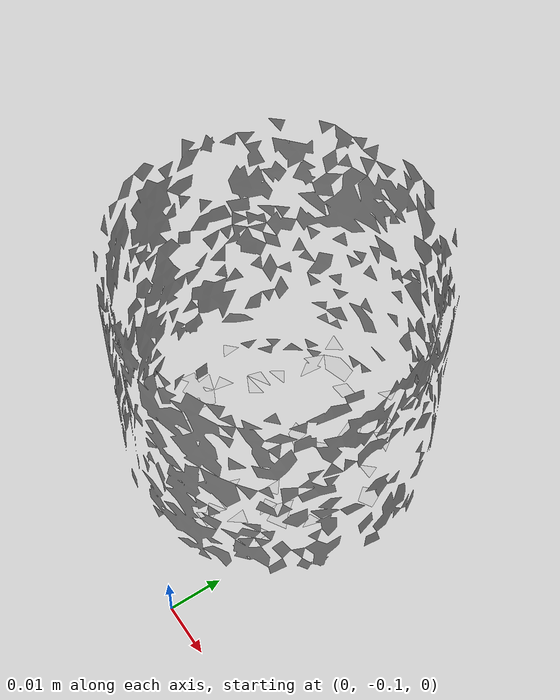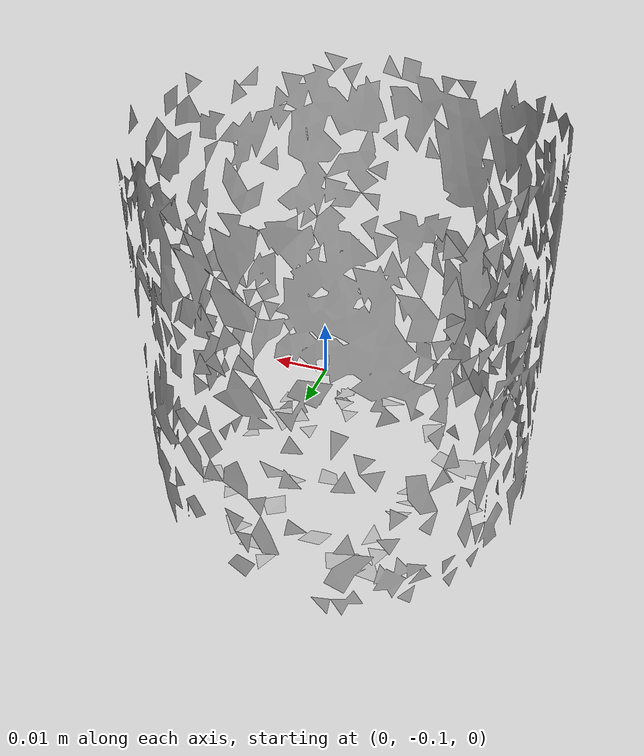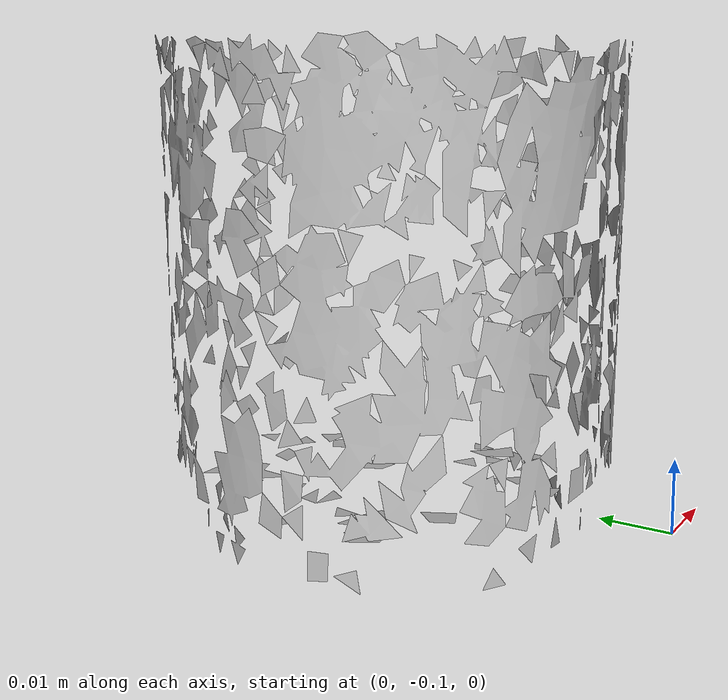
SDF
<?xml version="1.0" ?>
<sdf version="1.4">
  <model name='ycb_065-c_cups'>
    <link name='body'>
      <inertial>
        <mass>0.031</mass>
        <pose>-0.0144749747649 -0.0646168569767 0.0311621563162 0 0 0</pose>
        <inertia>
          <ixx>2.28046858771e-05</ixx>
          <ixy>-8.40703672051e-08</ixy>
          <ixz>7.88860702255e-08</ixz>
          <iyy>2.20279766942e-05</iyy>
          <iyz>7.40173292932e-07</iyz>
          <izz>2.07972936275e-05</izz>
        </inertia>
      </inertial>
      <visual name='ycb_065-c_cups_visual'>
        <pose>0 0 0 0 0 0</pose>
        <geometry>
          <mesh>
            <uri>model://ycb_065-c_cups/meshes/textured.dae</uri>
          </mesh>
        </geometry>
      </visual>
      <collision name='ycb_065-c_cups_collision'>
        <pose>0 0 0 0 0 0</pose>
        <geometry>
          <mesh>
            <uri>model://ycb_065-c_cups/meshes/nontextured.stl</uri>
          </mesh>
        </geometry>
        <max_contacts>10</max_contacts>
      </collision>
    </link>
  </model>
</sdf>
